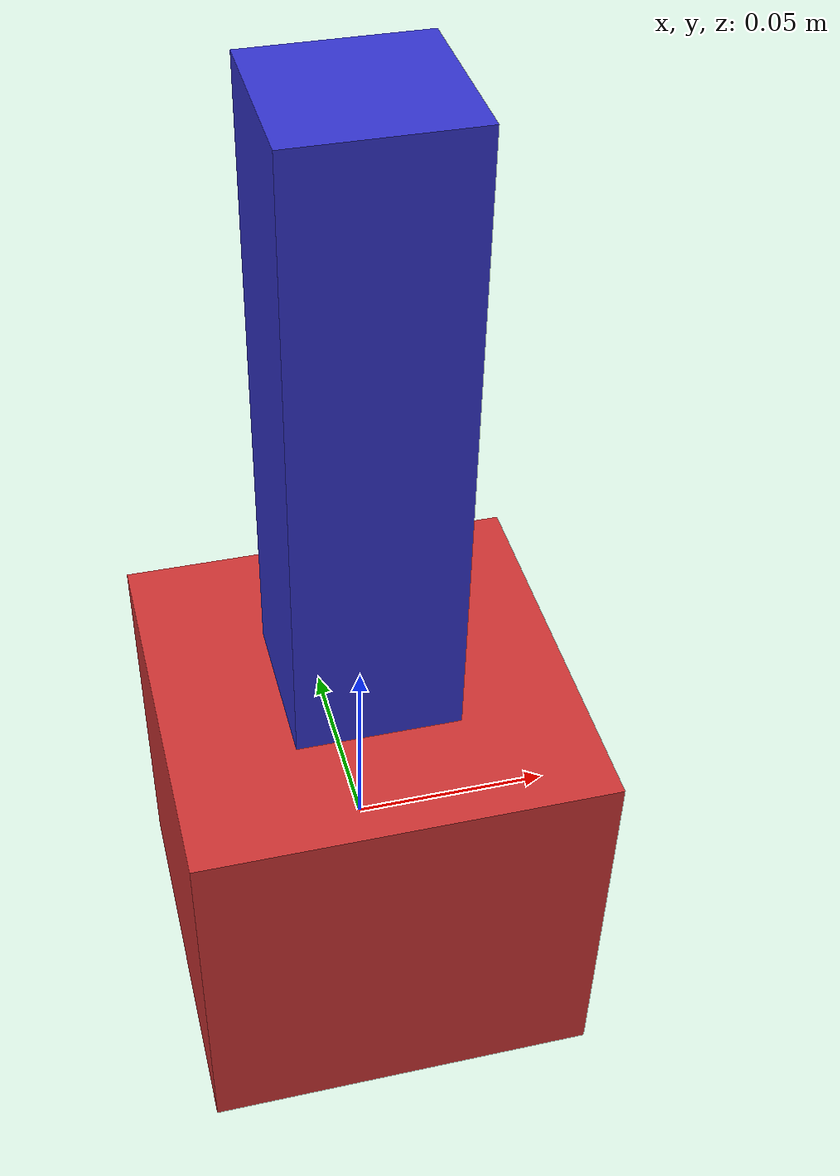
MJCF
<?xml version="1.0"?>
<mujoco model="simple_hinge">
  <compiler angle="radian"/>
  <option timestep="0.002" gravity="0 0 -9.81"/>

  <worldbody>
    <body name="link1" pos="0 0 0">
      <!-- Base link: small cube -->
      <geom name="geom1" type="box" size="0.05 0.05 0.05" rgba="0.8 0.2 0.2 1"/>

      <!-- Moving link: elongated box so rotation is clearly visible -->
      <body name="link2" pos="0 0 0.1">
        <joint name="hinge_joint" type="hinge" axis="1 0 0"/>
        <geom name="geom2" type="box" size="0.02 0.02 0.1" rgba="0.2 0.2 0.8 1"/>
      </body>
    </body>
  </worldbody>

  <actuator>
    <motor name="hinge_motor" joint="hinge_joint" ctrlrange="-1 1" gear="100"/>
  </actuator>

</mujoco>
